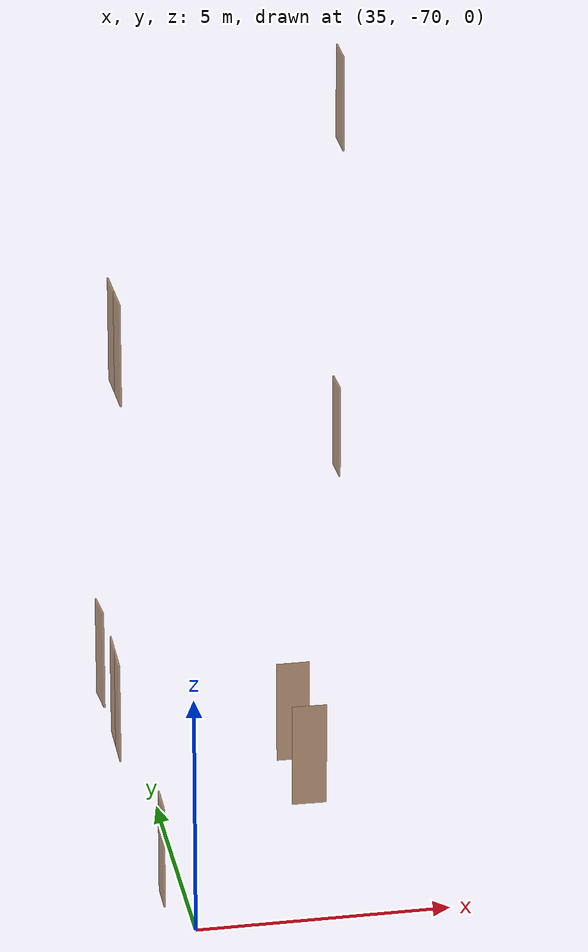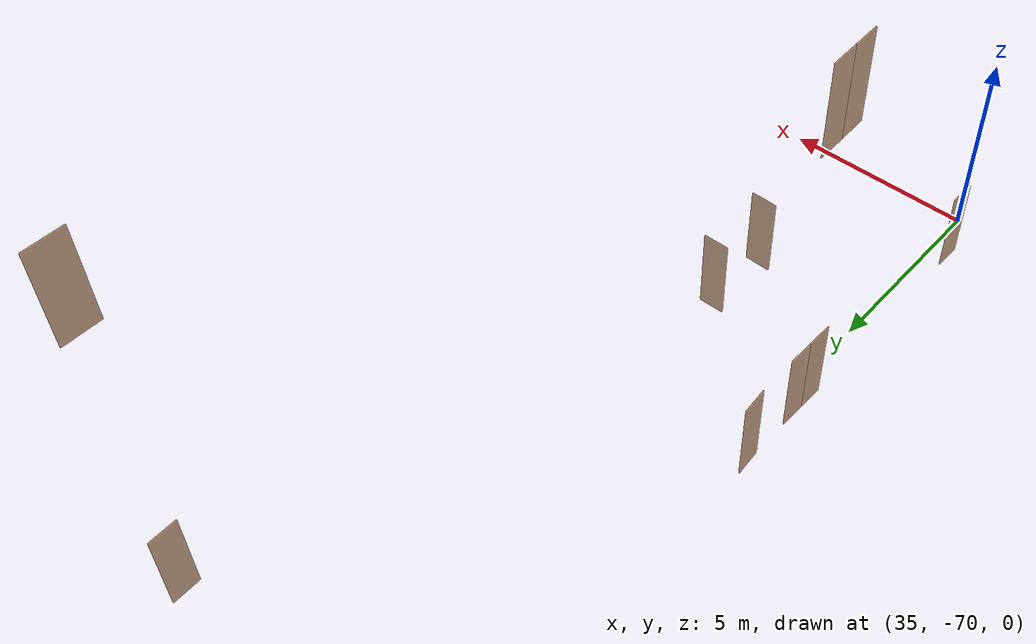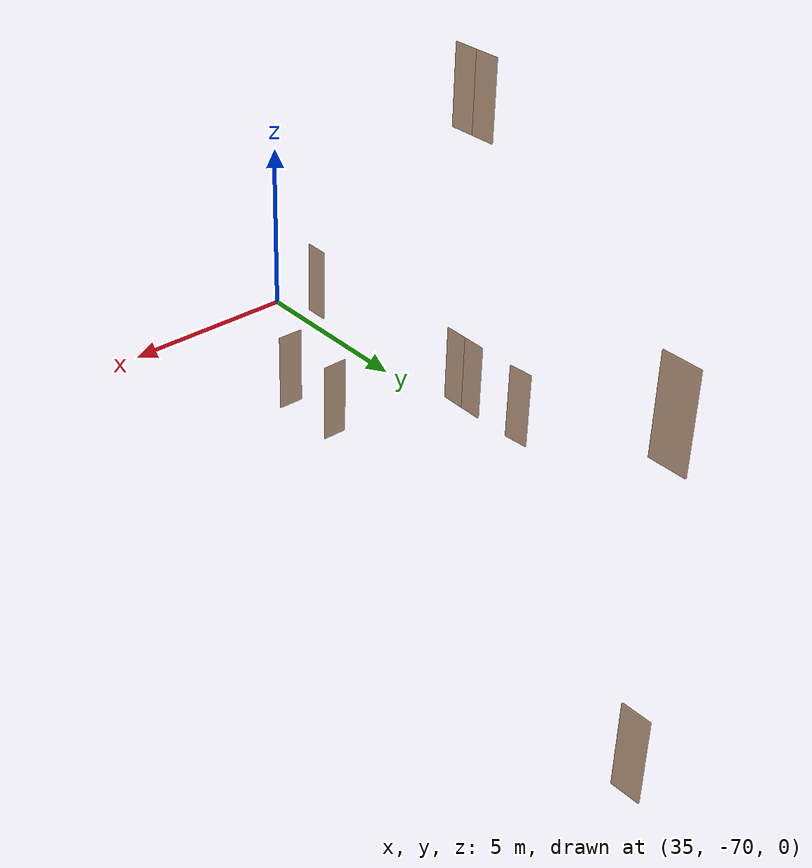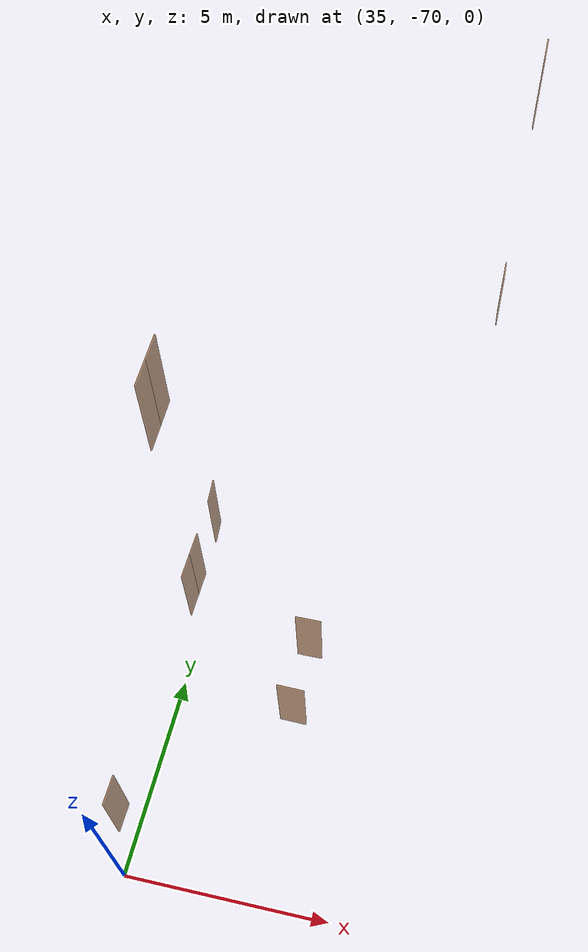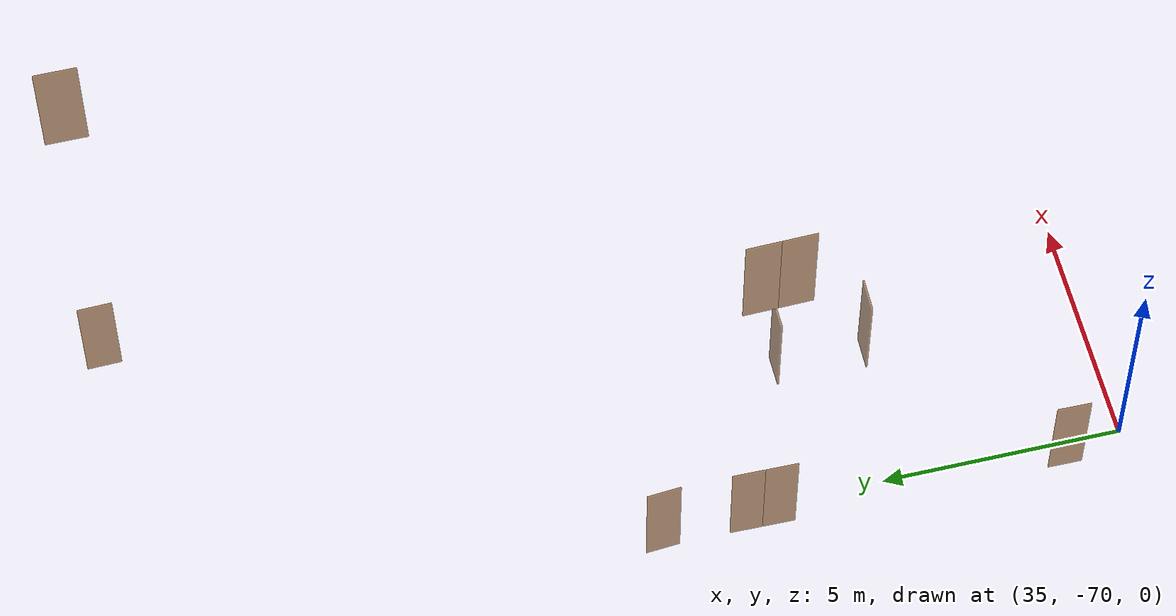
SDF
<sdf version="1.7">
 <world name="estce">
  <model name="TN4">
   <pose>34.54322367116888 -68.6983190900599 0.0 0 0 1.5597866738195798</pose>
   <link name="right">
    <pose>0 0 1.11 0 0 0</pose>
    <visual name="right_visual">
     <geometry><box><size>0.7035438381815191 0.03 2.2</size></box></geometry>
     <material><ambient>0.5 0.25 0 0.6</ambient><diffuse>0.5 0.25 0 0.6</diffuse></material>
    </visual>
    <collision name="right_collision">
     <geometry><box><size>0.7035438381815191 0.03 2.2</size></box></geometry>
     <surface><contact><collide_bitmask>0x02</collide_bitmask></contact></surface>
    </collision>
    <inertial>
     <mass>50.0</mass>
     <inertia><ixx>20.17041666666667</ixx><iyy>22.229058051013272</iyy><izz>2.066141384346598</izz></inertia>
    </inertial>
   </link>
   <joint name="right_joint" type="revolute">
    <parent>world</parent>
    <child>right</child>
    <axis><xyz>0 0 1</xyz><limit><lower>0</lower><upper>1.57</upper></limit></axis>
    <pose>0.35677191909075956 0 0 0 0 0</pose>
   </joint>
   <plugin name="door" filename="libdoor.so">
    <v_max_door>0.5</v_max_door>
    <a_max_door>0.3</a_max_door>
    <a_nom_door>0.15</a_nom_door>
    <dx_min_door>0.01</dx_min_door>
    <f_max_door>500.0</f_max_door>
    <door name="TN4" type="SwingDoor" left_joint_name="empty_joint" right_joint_name="right_joint"/>
   </plugin>
  </model>
  <model name="TD1009CA">
   <pose>38.051561909439855 -63.52871113043735 0.0 0 0 3.141592653589793</pose>
   <link name="right">
    <pose>0 0 1.11 0 0 0</pose>
    <visual name="right_visual">
     <geometry><box><size>0.6713819564927783 0.03 2.2</size></box></geometry>
     <material><ambient>0.5 0.25 0 0.6</ambient><diffuse>0.5 0.25 0 0.6</diffuse></material>
    </visual>
    <collision name="right_collision">
     <geometry><box><size>0.6713819564927783 0.03 2.2</size></box></geometry>
     <surface><contact><collide_bitmask>0x02</collide_bitmask></contact></surface>
    </collision>
    <inertial>
     <mass>50.0</mass>
     <inertia><ixx>20.17041666666667</ixx><iyy>22.0448072146003</iyy><izz>1.881890547933629</izz></inertia>
    </inertial>
   </link>
   <joint name="right_joint" type="revolute">
    <parent>world</parent>
    <child>right</child>
    <axis><xyz>0 0 -1</xyz><limit><lower>0</lower><upper>1.57</upper></limit></axis>
    <pose>0.34069097824638916 0 0 0 0 0</pose>
   </joint>
   <plugin name="door" filename="libdoor.so">
    <v_max_door>0.5</v_max_door>
    <a_max_door>0.3</a_max_door>
    <a_nom_door>0.15</a_nom_door>
    <dx_min_door>0.01</dx_min_door>
    <f_max_door>500.0</f_max_door>
    <door name="TD1009CA" type="SwingDoor" left_joint_name="empty_joint" right_joint_name="right_joint"/>
   </plugin>
  </model>
  <model name="TD1010AL1">
   <pose>38.04824006578872 -65.41280249264413 0.0 0 0 3.1203192675657387</pose>
   <link name="right">
    <pose>0 0 1.11 0 0 0</pose>
    <visual name="right_visual">
     <geometry><box><size>0.6990598299895224 0.03 2.2</size></box></geometry>
     <material><ambient>0.5 0.25 0 0.6</ambient><diffuse>0.5 0.25 0 0.6</diffuse></material>
    </visual>
    <collision name="right_collision">
     <geometry><box><size>0.6990598299895224 0.03 2.2</size></box></geometry>
     <surface><contact><collide_bitmask>0x02</collide_bitmask></contact></surface>
    </collision>
    <inertial>
     <mass>50.0</mass>
     <inertia><ixx>20.17041666666667</ixx><iyy>22.202852691270756</iyy><izz>2.0399360246040836</izz></inertia>
    </inertial>
   </link>
   <joint name="right_joint" type="revolute">
    <parent>world</parent>
    <child>right</child>
    <axis><xyz>0 0 1</xyz><limit><lower>0</lower><upper>1.57</upper></limit></axis>
    <pose>0.3545299149947612 0 0 0 0 0</pose>
   </joint>
   <plugin name="door" filename="libdoor.so">
    <v_max_door>0.5</v_max_door>
    <a_max_door>0.3</a_max_door>
    <a_nom_door>0.15</a_nom_door>
    <dx_min_door>0.01</dx_min_door>
    <f_max_door>500.0</f_max_door>
    <door name="TD1010AL1" type="SwingDoor" left_joint_name="empty_joint" right_joint_name="right_joint"/>
   </plugin>
  </model>
  <model name="TD1008AL">
   <pose>34.56893429213082 -62.36942136352812 0.0 0 0 1.5568159788755287</pose>
   <link name="right">
    <pose>0.338361719504987 0 1.11 0 0 0</pose>
    <visual name="right_visual">
     <geometry><box><size>0.666723439009974 0.03 2.2</size></box></geometry>
     <material><ambient>0.5 0.25 0 0.6</ambient><diffuse>0.5 0.25 0 0.6</diffuse></material>
    </visual>
    <collision name="right_collision">
     <geometry><box><size>0.666723439009974 0.03 2.2</size></box></geometry>
     <surface><contact><collide_bitmask>0x02</collide_bitmask></contact></surface>
    </collision>
    <inertial>
     <mass>50.0</mass>
     <inertia><ixx>20.17041666666667</ixx><iyy>22.018833933855365</iyy><izz>1.8559172671886939</izz></inertia>
    </inertial>
   </link>
   <joint name="right_joint" type="revolute">
    <parent>world</parent>
    <child>right</child>
    <axis><xyz>0 0 -1</xyz><limit><lower>0</lower><upper>1.57</upper></limit></axis>
    <pose>0.338361719504987 0 0 0 0 0</pose>
   </joint>
   <link name="left">
    <pose>-0.338361719504987 0 1.11 0 0 0</pose>
    <visual name="left_visual">
     <geometry><box><size>0.666723439009974 0.03 2.2</size></box></geometry>
     <material><ambient>0.5 0.25 0 0.6</ambient><diffuse>0.5 0.25 0 0.6</diffuse></material>
    </visual>
    <collision name="left_collision">
     <geometry><box><size>0.666723439009974 0.03 2.2</size></box></geometry>
     <surface><contact><collide_bitmask>0x02</collide_bitmask></contact></surface>
    </collision>
    <inertial>
     <mass>50.0</mass>
     <inertia><ixx>20.17041666666667</ixx><iyy>22.018833933855365</iyy><izz>1.8559172671886939</izz></inertia>
    </inertial>
   </link>
   <joint name="left_joint" type="revolute">
    <parent>world</parent>
    <child>left</child>
    <axis><xyz>0 0 -1</xyz><limit><lower>-1.57</lower><upper>0</upper></limit></axis>
    <pose>-0.338361719504987 0 0 0 0 0</pose>
   </joint>
   <plugin name="door" filename="libdoor.so">
    <v_max_door>0.5</v_max_door>
    <a_max_door>0.3</a_max_door>
    <a_nom_door>0.15</a_nom_door>
    <dx_min_door>0.01</dx_min_door>
    <f_max_door>500.0</f_max_door>
    <door name="TD1008AL" type="DoubleSwingDoor" left_joint_name="left_joint" right_joint_name="right_joint"/>
   </plugin>
  </model>
  <model name="TN2">
   <pose>34.550013250253116 -60.30635445217207 0.0 0 0 -1.4909927351613321</pose>
   <link name="right">
    <pose>0 0 1.11 0 0 0</pose>
    <visual name="right_visual">
     <geometry><box><size>0.7020408952186347 0.03 2.2</size></box></geometry>
     <material><ambient>0.5 0.25 0 0.6</ambient><diffuse>0.5 0.25 0 0.6</diffuse></material>
    </visual>
    <collision name="right_collision">
     <geometry><box><size>0.7020408952186347 0.03 2.2</size></box></geometry>
     <surface><contact><collide_bitmask>0x02</collide_bitmask></contact></surface>
    </collision>
    <inertial>
     <mass>50.0</mass>
     <inertia><ixx>20.17041666666667</ixx><iyy>22.220255910664097</iyy><izz>2.057339243997425</izz></inertia>
    </inertial>
   </link>
   <joint name="right_joint" type="revolute">
    <parent>world</parent>
    <child>right</child>
    <axis><xyz>0 0 -1</xyz><limit><lower>0</lower><upper>1.57</upper></limit></axis>
    <pose>0.35602044760931734 0 0 0 0 0</pose>
   </joint>
   <plugin name="door" filename="libdoor.so">
    <v_max_door>0.5</v_max_door>
    <a_max_door>0.3</a_max_door>
    <a_nom_door>0.15</a_nom_door>
    <dx_min_door>0.01</dx_min_door>
    <f_max_door>500.0</f_max_door>
    <door name="TN2" type="SwingDoor" left_joint_name="empty_joint" right_joint_name="right_joint"/>
   </plugin>
  </model>
  <model name="TD1004CA">
   <pose>41.418329006971035 -50.19107119581413 0.0 0 0 1.5993775933365804</pose>
   <link name="right">
    <pose>0 0 1.11 0 0 0</pose>
    <visual name="right_visual">
     <geometry><box><size>0.7180729002156033 0.03 2.2</size></box></geometry>
     <material><ambient>0.5 0.25 0 0.6</ambient><diffuse>0.5 0.25 0 0.6</diffuse></material>
    </visual>
    <collision name="right_collision">
     <geometry><box><size>0.7180729002156033 0.03 2.2</size></box></geometry>
     <surface><contact><collide_bitmask>0x02</collide_bitmask></contact></surface>
    </collision>
    <inertial>
     <mass>50.0</mass>
     <inertia><ixx>20.17041666666667</ixx><iyy>22.315119541766872</iyy><izz>2.1522028751001994</izz></inertia>
    </inertial>
   </link>
   <joint name="right_joint" type="revolute">
    <parent>world</parent>
    <child>right</child>
    <axis><xyz>0 0 1</xyz><limit><lower>0</lower><upper>1.57</upper></limit></axis>
    <pose>0.36403645010780167 0 0 0 0 0</pose>
   </joint>
   <plugin name="door" filename="libdoor.so">
    <v_max_door>0.5</v_max_door>
    <a_max_door>0.3</a_max_door>
    <a_nom_door>0.15</a_nom_door>
    <dx_min_door>0.01</dx_min_door>
    <f_max_door>500.0</f_max_door>
    <door name="TD1004CA" type="SwingDoor" left_joint_name="empty_joint" right_joint_name="right_joint"/>
   </plugin>
  </model>
  <model name="TD1107AL1">
   <pose>34.64926711548466 -62.428015983598065 8.0 0 0 1.5958340804097362</pose>
   <link name="right">
    <pose>0.3451872536102721 0 1.11 0 0 0</pose>
    <visual name="right_visual">
     <geometry><box><size>0.6803745072205442 0.03 2.2</size></box></geometry>
     <material><ambient>0.5 0.25 0 0.6</ambient><diffuse>0.5 0.25 0 0.6</diffuse></material>
    </visual>
    <collision name="right_collision">
     <geometry><box><size>0.6803745072205442 0.03 2.2</size></box></geometry>
     <surface><contact><collide_bitmask>0x02</collide_bitmask></contact></surface>
    </collision>
    <inertial>
     <mass>50.0</mass>
     <inertia><ixx>20.17041666666667</ixx><iyy>22.095456125315</iyy><izz>1.9325394586483264</izz></inertia>
    </inertial>
   </link>
   <joint name="right_joint" type="revolute">
    <parent>world</parent>
    <child>right</child>
    <axis><xyz>0 0 -1</xyz><limit><lower>0</lower><upper>1.57</upper></limit></axis>
    <pose>0.3451872536102721 0 0 0 0 0</pose>
   </joint>
   <link name="left">
    <pose>-0.3451872536102721 0 1.11 0 0 0</pose>
    <visual name="left_visual">
     <geometry><box><size>0.6803745072205442 0.03 2.2</size></box></geometry>
     <material><ambient>0.5 0.25 0 0.6</ambient><diffuse>0.5 0.25 0 0.6</diffuse></material>
    </visual>
    <collision name="left_collision">
     <geometry><box><size>0.6803745072205442 0.03 2.2</size></box></geometry>
     <surface><contact><collide_bitmask>0x02</collide_bitmask></contact></surface>
    </collision>
    <inertial>
     <mass>50.0</mass>
     <inertia><ixx>20.17041666666667</ixx><iyy>22.095456125315</iyy><izz>1.9325394586483264</izz></inertia>
    </inertial>
   </link>
   <joint name="left_joint" type="revolute">
    <parent>world</parent>
    <child>left</child>
    <axis><xyz>0 0 -1</xyz><limit><lower>-1.57</lower><upper>0</upper></limit></axis>
    <pose>-0.3451872536102721 0 0 0 0 0</pose>
   </joint>
   <plugin name="door" filename="libdoor.so">
    <v_max_door>0.5</v_max_door>
    <a_max_door>0.3</a_max_door>
    <a_nom_door>0.15</a_nom_door>
    <dx_min_door>0.01</dx_min_door>
    <f_max_door>500.0</f_max_door>
    <door name="TD1107AL1" type="DoubleSwingDoor" left_joint_name="left_joint" right_joint_name="right_joint"/>
   </plugin>
  </model>
  <model name="TD1117CI">
   <pose>41.458265439552534 -50.26171059557072 8.0 0 0 1.5729470502308434</pose>
   <link name="right">
    <pose>0 0 1.11 0 0 0</pose>
    <visual name="right_visual">
     <geometry><box><size>0.8438285463336463 0.03 2.2</size></box></geometry>
     <material><ambient>0.5 0.25 0 0.6</ambient><diffuse>0.5 0.25 0 0.6</diffuse></material>
    </visual>
    <collision name="right_collision">
     <geometry><box><size>0.8438285463336463 0.03 2.2</size></box></geometry>
     <surface><contact><collide_bitmask>0x02</collide_bitmask></contact></surface>
    </collision>
    <inertial>
     <mass>50.0</mass>
     <inertia><ixx>20.17041666666667</ixx><iyy>23.133527565031486</iyy><izz>2.9706108983648116</izz></inertia>
    </inertial>
   </link>
   <joint name="right_joint" type="revolute">
    <parent>world</parent>
    <child>right</child>
    <axis><xyz>0 0 1</xyz><limit><lower>0</lower><upper>1.57</upper></limit></axis>
    <pose>0.4269142731668232 0 0 0 0 0</pose>
   </joint>
   <plugin name="door" filename="libdoor.so">
    <v_max_door>0.5</v_max_door>
    <a_max_door>0.3</a_max_door>
    <a_nom_door>0.15</a_nom_door>
    <dx_min_door>0.01</dx_min_door>
    <f_max_door>500.0</f_max_door>
    <door name="TD1117CI" type="SwingDoor" left_joint_name="empty_joint" right_joint_name="right_joint"/>
   </plugin>
  </model>
 </world>
</sdf>
